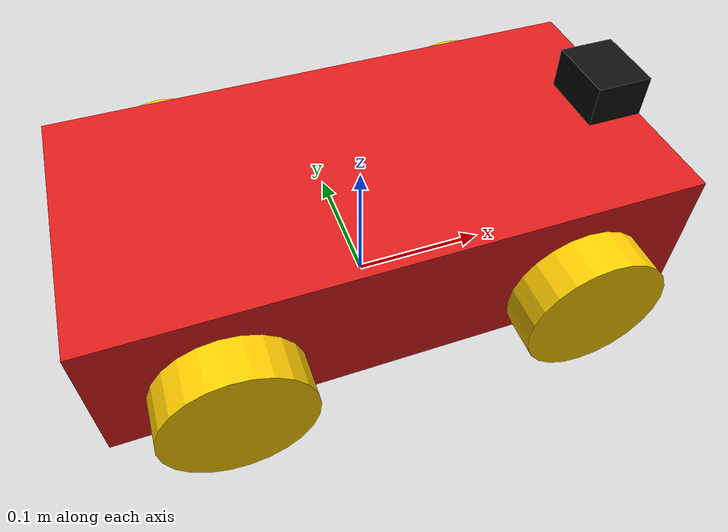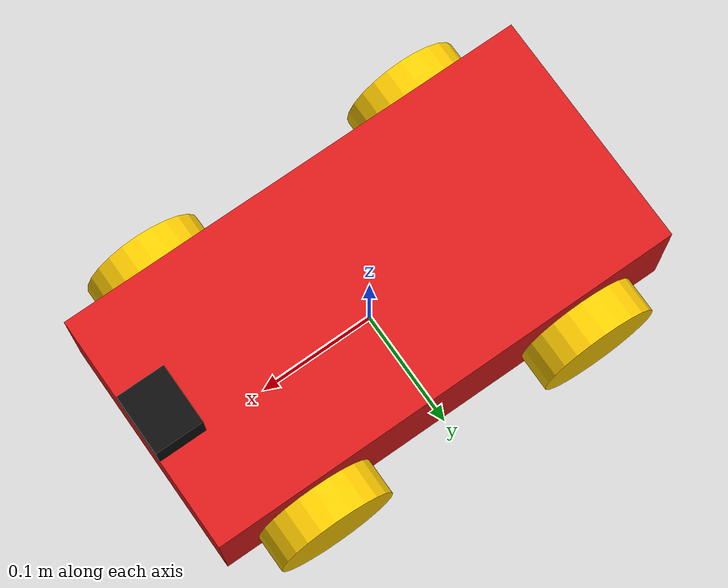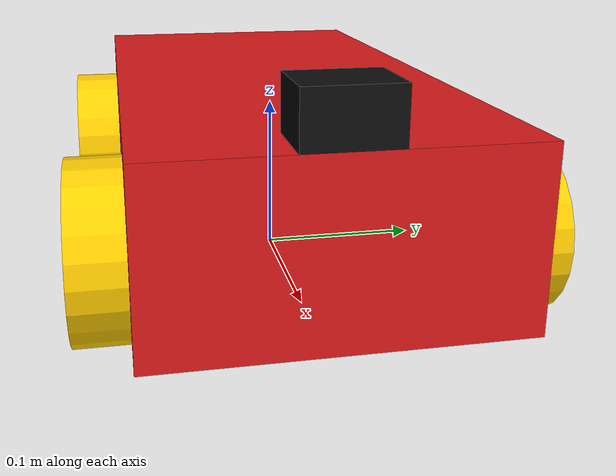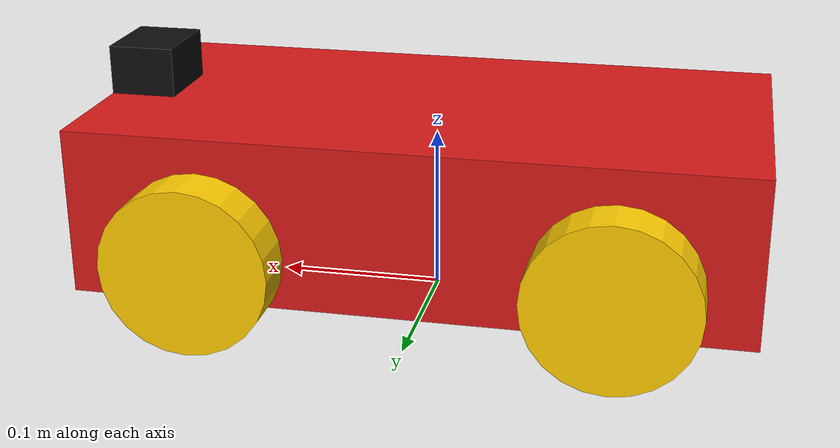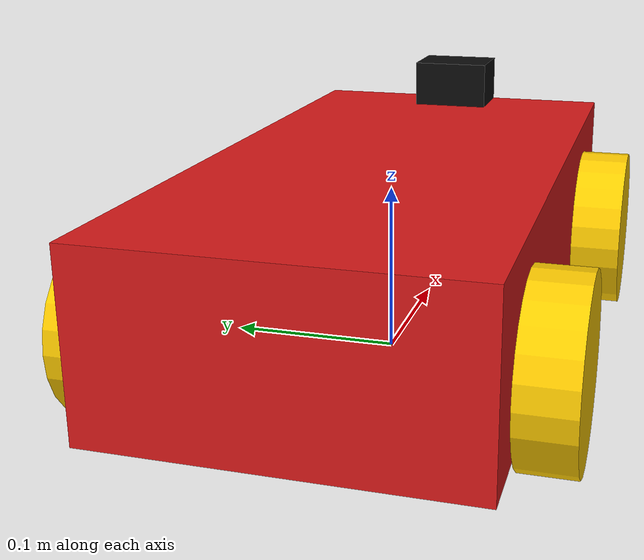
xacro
<?xml version="1.0"?>

<robot name="colour_detection_robot"
       xmlns:xacro="http://www.ros.org/wiki/xacro">

    <!-- MATERIALS                                         -->

    <material name="red">
        <color rgba="0.85 0.1 0.1 1.0"/>
    </material>

    <material name="yellow">
        <color rgba="1.0 0.8 0.0 1.0"/>
    </material>

    <material name="black">
        <color rgba="0.05 0.05 0.05 1.0"/>
    </material>

    <material name="grey">
        <color rgba="0.35 0.35 0.35 1.0"/>
    </material>

    <!-- ROBOT PARAMETERS                                  -->

    <xacro:property name="wheel_radius" value="0.05"/>
    <xacro:property name="wheel_width" value="0.03"/>

    <xacro:property name="wheel_separation" value="0.23"/>
    <xacro:property name="wheel_base" value="0.24"/>

    <!-- BASE FOOTPRINT                                    -->

    <link name="base_footprint"/>

    <joint name="base_footprint_joint" type="fixed">
        <parent link="base_footprint"/>
        <child link="base_link"/>
        <origin xyz="0 0 0" rpy="0 0 0"/>
    </joint>

    <!-- MAIN CHASSIS                                      -->

    <link name="base_link">

        <visual>
            <origin xyz="0 0 0.07" rpy="0 0 0"/>

            <geometry>
                <box size="0.40 0.20 0.10"/>
            </geometry>

            <material name="red"/>
        </visual>

        <collision>
            <origin xyz="0 0 0.07" rpy="0 0 0"/>

            <geometry>
                <box size="0.40 0.20 0.10"/>
            </geometry>
        </collision>

        <inertial>
            <origin xyz="0 0 0.07" rpy="0 0 0"/>

            <mass value="5.0"/>

            <inertia
                ixx="0.02083"
                ixy="0.0"
                ixz="0.0"
                iyy="0.07083"
                iyz="0.0"
                izz="0.08333"/>
        </inertial>

    </link>

    <!-- FRONT LEFT WHEEL                                  -->

    <link name="front_left_wheel_link">

        <visual>
            <origin xyz="0 0 0" rpy="${pi/2} 0 0"/>

            <geometry>
                <cylinder radius="${wheel_radius}"
                          length="${wheel_width}"/>
            </geometry>

            <material name="yellow"/>
        </visual>

        <collision>
            <origin xyz="0 0 0" rpy="${pi/2} 0 0"/>

            <geometry>
                <cylinder radius="${wheel_radius}"
                          length="${wheel_width}"/>
            </geometry>
        </collision>

        <inertial>
            <origin xyz="0 0 0" rpy="0 0 0"/>

            <mass value="0.5"/>

            <inertia
                ixx="0.00035"
                ixy="0.0"
                ixz="0.0"
                iyy="0.000625"
                iyz="0.0"
                izz="0.00035"/>
        </inertial>

    </link>

    <joint name="front_left_wheel_joint" type="continuous">

        <parent link="base_link"/>
        <child link="front_left_wheel_link"/>

        <origin xyz="${wheel_base/2} ${wheel_separation/2} ${wheel_radius}" rpy="0 0 0"/>

        <axis xyz="0 1 0"/>

        <limit effort="20.0" velocity="20.0"/>

        <dynamics damping="0.02" friction="0.005"/>

    </joint>

    <!-- FRONT RIGHT WHEEL                                 -->

    <link name="front_right_wheel_link">

        <visual>
            <origin xyz="0 0 0" rpy="${pi/2} 0 0"/>

            <geometry>
                <cylinder radius="${wheel_radius}"
                          length="${wheel_width}"/>
            </geometry>

            <material name="yellow"/>
        </visual>

        <collision>
            <origin xyz="0 0 0" rpy="${pi/2} 0 0"/>

            <geometry>
                <cylinder radius="${wheel_radius}"
                          length="${wheel_width}"/>
            </geometry>
        </collision>

        <inertial>
            <origin xyz="0 0 0" rpy="0 0 0"/>

            <mass value="0.5"/>

            <inertia
                ixx="0.00035"
                ixy="0.0"
                ixz="0.0"
                iyy="0.000625"
                iyz="0.0"
                izz="0.00035"/>
        </inertial>

    </link>

    <joint name="front_right_wheel_joint" type="continuous">

        <parent link="base_link"/>
        <child link="front_right_wheel_link"/>

        <origin xyz="${wheel_base/2} ${-wheel_separation/2} ${wheel_radius}" rpy="0 0 0"/>

        <axis xyz="0 1 0"/>

        <limit effort="20.0" velocity="20.0"/>

        <dynamics damping="0.02" friction="0.005"/>

    </joint>

    <!-- REAR LEFT WHEEL                                   -->

    <link name="rear_left_wheel_link">

        <visual>
            <origin xyz="0 0 0" rpy="${pi/2} 0 0"/>

            <geometry>
                <cylinder radius="${wheel_radius}"
                          length="${wheel_width}"/>
            </geometry>

            <material name="yellow"/>
        </visual>

        <collision>
            <origin xyz="0 0 0" rpy="${pi/2} 0 0"/>

            <geometry>
                <cylinder radius="${wheel_radius}"
                          length="${wheel_width}"/>
            </geometry>
        </collision>

        <inertial>
            <origin xyz="0 0 0" rpy="0 0 0"/>

            <mass value="0.5"/>

            <inertia
                ixx="0.00035"
                ixy="0.0"
                ixz="0.0"
                iyy="0.000625"
                iyz="0.0"
                izz="0.00035"/>
        </inertial>

    </link>

    <joint name="rear_left_wheel_joint" type="continuous">

        <parent link="base_link"/>
        <child link="rear_left_wheel_link"/>

        <origin xyz="${-wheel_base/2} ${wheel_separation/2} ${wheel_radius}" rpy="0 0 0"/>

        <axis xyz="0 1 0"/>

        <limit effort="20.0" velocity="20.0"/>

        <dynamics damping="0.02" friction="0.005"/>

    </joint>

    <!-- REAR RIGHT WHEEL                                  -->

    <link name="rear_right_wheel_link">

        <visual>
            <origin xyz="0 0 0" rpy="${pi/2} 0 0"/>

            <geometry>
                <cylinder radius="${wheel_radius}"
                          length="${wheel_width}"/>
            </geometry>

            <material name="yellow"/>
        </visual>

        <collision>
            <origin xyz="0 0 0" rpy="${pi/2} 0 0"/>

            <geometry>
                <cylinder radius="${wheel_radius}"
                          length="${wheel_width}"/>
            </geometry>
        </collision>

        <inertial>
            <origin xyz="0 0 0" rpy="0 0 0"/>

            <mass value="0.5"/>

            <inertia
                ixx="0.00035"
                ixy="0.0"
                ixz="0.0"
                iyy="0.000625"
                iyz="0.0"
                izz="0.00035"/>
        </inertial>

    </link>

    <joint name="rear_right_wheel_joint" type="continuous">

        <parent link="base_link"/>
        <child link="rear_right_wheel_link"/>

        <origin xyz="${-wheel_base/2} ${-wheel_separation/2} ${wheel_radius}" rpy="0 0 0"/>

        <axis xyz="0 1 0"/>

        <limit effort="20.0" velocity="20.0"/>

        <dynamics damping="0.02" friction="0.005"/>

    </joint>

    <!-- FRONT RGB CAMERA                                  -->

    <link name="camera_link">

        <visual>
            <origin xyz="0 0 0" rpy="0 0 0"/>

            <geometry>
                <box size="0.04 0.05 0.03"/>
            </geometry>

            <material name="black"/>
        </visual>

        <collision>
            <origin xyz="0 0 0" rpy="0 0 0"/>

            <geometry>
                <box size="0.04 0.05 0.03"/>
            </geometry>
        </collision>

        <inertial>
            <origin xyz="0 0 0" rpy="0 0 0"/>

            <mass value="0.05"/>

            <inertia
                ixx="0.0000142"
                ixy="0"
                ixz="0"
                iyy="0.0000104"
                iyz="0"
                izz="0.0000171"/>
        </inertial>

    </link>

    <joint name="camera_joint" type="fixed">

        <parent link="base_link"/>
        <child link="camera_link"/>

        <!-- Front of robot, above chassis -->

        <origin xyz="0.18 0 0.135"
                rpy="0 0 0"/>

    </joint>

    <!-- Camera Optical Joint & Link (ROS Optical Frame: Z forward, X right, Y down) -->

    <joint name="camera_optical_joint" type="fixed">
        <parent link="camera_link"/>
        <child link="camera_optical_link"/>
        <origin xyz="0 0 0" rpy="${-pi/2} 0 ${-pi/2}"/>
    </joint>

    <link name="camera_optical_link"/>

    <!-- GAZEBO CAMERA SENSOR                              -->

    <gazebo reference="camera_link">

        <sensor name="front_camera" type="camera">

            <pose>0 0 0 0 0 0</pose>

            <always_on>true</always_on>

            <update_rate>30</update_rate>

            <visualize>true</visualize>

            <topic>/camera/image</topic>

            <camera_info_topic>/camera/camera_info</camera_info_topic>

            <gz_frame_id>camera_optical_link</gz_frame_id>
            <ignition_frame_id>camera_optical_link</ignition_frame_id>

            <camera>

                <horizontal_fov>1.047</horizontal_fov>

                <image>
                    <width>640</width>
                    <height>480</height>
                    <format>R8G8B8</format>
                </image>

                <clip>
                    <near>0.05</near>
                    <far>10.0</far>
                </clip>

            </camera>

        </sensor>

    </gazebo>

    <!-- GAZEBO PHYSICS AND FRICTION                       -->

    <gazebo reference="base_link">
        <material>Gazebo/Red</material>
        <self_collide>false</self_collide>
    </gazebo>

    <gazebo reference="camera_link">
        <material>Gazebo/Black</material>
    </gazebo>

    <gazebo reference="front_left_wheel_link">
        <material>Gazebo/Yellow</material>
        <mu1>1.0</mu1>
        <mu2>0.05</mu2>
        <fdir1>1 0 0</fdir1>
        <kp>100000.0</kp>
        <kd>10.0</kd>
        <self_collide>false</self_collide>
    </gazebo>

    <gazebo reference="front_right_wheel_link">
        <material>Gazebo/Yellow</material>
        <mu1>1.0</mu1>
        <mu2>0.05</mu2>
        <fdir1>1 0 0</fdir1>
        <kp>100000.0</kp>
        <kd>10.0</kd>
        <self_collide>false</self_collide>
    </gazebo>

    <gazebo reference="rear_left_wheel_link">
        <material>Gazebo/Yellow</material>
        <mu1>1.0</mu1>
        <mu2>0.05</mu2>
        <fdir1>1 0 0</fdir1>
        <kp>100000.0</kp>
        <kd>10.0</kd>
        <self_collide>false</self_collide>
    </gazebo>

    <gazebo reference="rear_right_wheel_link">
        <material>Gazebo/Yellow</material>
        <mu1>1.0</mu1>
        <mu2>0.05</mu2>
        <fdir1>1 0 0</fdir1>
        <kp>100000.0</kp>
        <kd>10.0</kd>
        <self_collide>false</self_collide>
    </gazebo>

    <!-- GAZEBO DIFFERENTIAL DRIVE SYSTEM                  -->

    <gazebo>

        <plugin
            filename="ignition-gazebo-diff-drive-system"
            name="ignition::gazebo::systems::DiffDrive">

            <left_joint>front_left_wheel_joint</left_joint>
            <left_joint>rear_left_wheel_joint</left_joint>

            <right_joint>front_right_wheel_joint</right_joint>
            <right_joint>rear_right_wheel_joint</right_joint>

            <wheel_separation>${wheel_separation}</wheel_separation>

            <wheel_radius>${wheel_radius}</wheel_radius>

            <max_wheel_torque>50</max_wheel_torque>

            <odom_publish_frequency>50</odom_publish_frequency>

            <topic>/cmd_vel</topic>

            <odom_topic>/model/colour_detection_robot/odometry_raw</odom_topic>

            <tf_topic>/model/colour_detection_robot/tf_raw</tf_topic>

            <frame_id>odom</frame_id>

            <child_frame_id>base_footprint</child_frame_id>

            <max_linear_acceleration>5.0</max_linear_acceleration>
            <min_linear_acceleration>-5.0</min_linear_acceleration>

            <max_angular_acceleration>10.0</max_angular_acceleration>
            <min_angular_acceleration>-10.0</min_angular_acceleration>

        </plugin>

        <!-- GROUND-TRUTH ODOMETRY PUBLISHER (Zero Wheel-Slip Drift) -->
        <plugin
            filename="ignition-gazebo-odometry-publisher-system"
            name="ignition::gazebo::systems::OdometryPublisher">
            <odom_frame>odom</odom_frame>
            <robot_base_frame>base_footprint</robot_base_frame>
            <odom_topic>/odom</odom_topic>
            <tf_topic>/tf</tf_topic>
            <odom_publish_frequency>50</odom_publish_frequency>
            <dimensions>2</dimensions>
        </plugin>

        <!-- JOINT STATE PUBLISHER -->

        <plugin
            filename="ignition-gazebo-joint-state-publisher-system"
            name="ignition::gazebo::systems::JointStatePublisher">

            <topic>/joint_states</topic>

            <joint_name>front_left_wheel_joint</joint_name>
            <joint_name>front_right_wheel_joint</joint_name>

            <joint_name>rear_left_wheel_joint</joint_name>
            <joint_name>rear_right_wheel_joint</joint_name>

        </plugin>

    </gazebo>

</robot>
